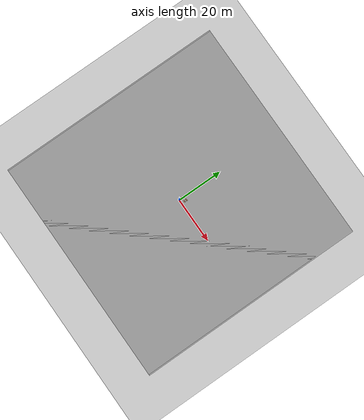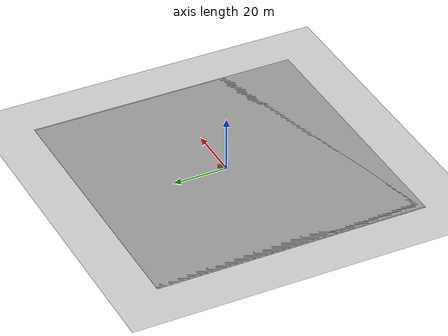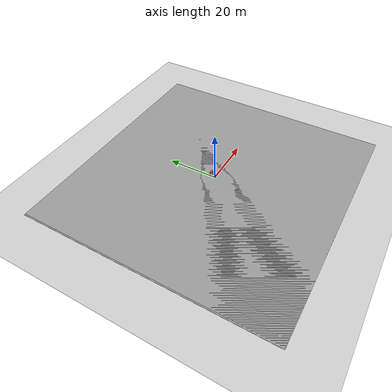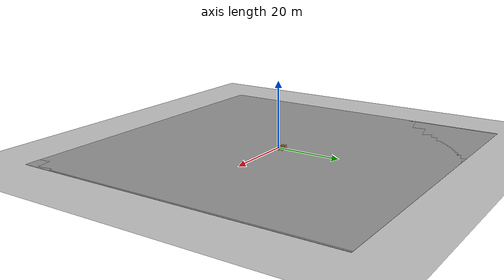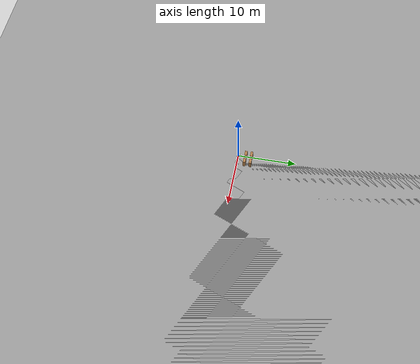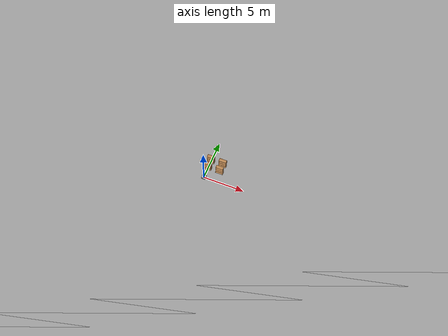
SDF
<sdf version="1.6">
 <world name="default">
  <model name="ground_plane">
   <static>1</static>
   <link name="link">
    <collision name="collision">
     <geometry><plane><normal>0 0 1</normal><size>100 100</size></plane></geometry>
     <surface><friction><ode><mu>1.0</mu><mu2>1.0</mu2></ode></friction></surface>
    </collision>
    <visual name="visual">
     <cast_shadows>0</cast_shadows>
     <geometry><plane><normal>0 0 1</normal><size>100 100</size></plane></geometry>
     <material>
      <script><uri>file://media/materials/scripts/gazebo.material</uri><name>Gazebo/Grey</name></script>
     </material>
    </visual>
   </link>
  </model>
  <light name="sun" type="directional">
   <pose>0 0 10 0 -0 0</pose>
   <diffuse>0.8 0.8 0.8 1</diffuse>
   <specular>0.1 0.1 0.1 1</specular>
   <attenuation>
    <range>1000</range>
    <constant>0.9</constant>
    <linear>0.01</linear>
    <quadratic>0.001</quadratic>
   </attenuation>
   <direction>-0.5 0.5 -1</direction>
  </light>
  <model name="bookshelf">
   <static>1</static>
   <link name="link">
    <inertial><mass>1</mass></inertial>
    <collision name="back">
     <pose>0 0.005 0.6 0 -0 0</pose>
     <geometry><box><size>0.9 0.01 1.2</size></box></geometry>
    </collision>
    <visual name="visual1">
     <pose>0 0.005 0.6 0 -0 0</pose>
     <geometry><box><size>0.9 0.01 1.2</size></box></geometry>
     <material>
      <script><uri>file://media/materials/scripts/gazebo.material</uri><name>Gazebo/Wood</name></script>
     </material>
    </visual>
    <collision name="left_side">
     <pose>0.45 -0.195 0.6 0 -0 0</pose>
     <geometry><box><size>0.02 0.4 1.2</size></box></geometry>
    </collision>
    <visual name="visual2">
     <pose>0.45 -0.195 0.6 0 -0 0</pose>
     <geometry><box><size>0.02 0.4 1.2</size></box></geometry>
     <material>
      <script><uri>file://media/materials/scripts/gazebo.material</uri><name>Gazebo/Wood</name></script>
     </material>
    </visual>
    <collision name="right_side">
     <pose>-0.45 -0.195 0.6 0 -0 0</pose>
     <geometry><box><size>0.02 0.4 1.2</size></box></geometry>
    </collision>
    <visual name="visual3">
     <pose>-0.45 -0.195 0.6 0 -0 0</pose>
     <geometry><box><size>0.02 0.4 1.2</size></box></geometry>
     <material>
      <script><uri>file://media/materials/scripts/gazebo.material</uri><name>Gazebo/Wood</name></script>
     </material>
    </visual>
    <collision name="bottom">
     <pose>0 -0.195 0.03 0 -0 0</pose>
     <geometry><box><size>0.88 0.4 0.06</size></box></geometry>
    </collision>
    <visual name="visual4">
     <pose>0 -0.195 0.03 0 -0 0</pose>
     <geometry><box><size>0.88 0.4 0.06</size></box></geometry>
     <material>
      <script><uri>file://media/materials/scripts/gazebo.material</uri><name>Gazebo/Wood</name></script>
     </material>
    </visual>
    <collision name="top">
     <pose>0 -0.195 1.19 0 -0 0</pose>
     <geometry><box><size>0.88 0.4 0.02</size></box></geometry>
    </collision>
    <visual name="visual5">
     <pose>0 -0.195 1.19 0 -0 0</pose>
     <geometry><box><size>0.88 0.4 0.02</size></box></geometry>
     <material>
      <script><uri>file://media/materials/scripts/gazebo.material</uri><name>Gazebo/Wood</name></script>
     </material>
    </visual>
    <collision name="low_shelf">
     <pose>0 -0.195 0.43 0 -0 0</pose>
     <geometry><box><size>0.88 0.4 0.02</size></box></geometry>
    </collision>
    <visual name="visual6">
     <pose>0 -0.195 0.43 0 -0 0</pose>
     <geometry><box><size>0.88 0.4 0.02</size></box></geometry>
     <material>
      <script><uri>file://media/materials/scripts/gazebo.material</uri><name>Gazebo/Wood</name></script>
     </material>
    </visual>
    <collision name="high_shelf">
     <pose>0 -0.195 0.8 0 -0 0</pose>
     <geometry><box><size>0.88 0.4 0.02</size></box></geometry>
    </collision>
    <visual name="visual7">
     <pose>0 -0.195 0.8 0 -0 0</pose>
     <geometry><box><size>0.88 0.4 0.02</size></box></geometry>
     <material>
      <script><uri>file://media/materials/scripts/gazebo.material</uri><name>Gazebo/Wood</name></script>
     </material>
    </visual>
    <velocity_decay><linear>0</linear><angular>0</angular></velocity_decay>
   </link>
   <pose>0 1.53026 0 0 -0 0</pose>
  </model>
  <model name="bookshelf_2">
   <static>1</static>
   <link name="link">
    <inertial><mass>1</mass></inertial>
    <collision name="back">
     <pose>0 0.005 0.6 0 -0 0</pose>
     <geometry><box><size>0.9 0.01 1.2</size></box></geometry>
    </collision>
    <visual name="visual1">
     <pose>0 0.005 0.6 0 -0 0</pose>
     <geometry><box><size>0.9 0.01 1.2</size></box></geometry>
     <material>
      <script><uri>file://media/materials/scripts/gazebo.material</uri><name>Gazebo/Wood</name></script>
     </material>
    </visual>
    <collision name="left_side">
     <pose>0.45 -0.195 0.6 0 -0 0</pose>
     <geometry><box><size>0.02 0.4 1.2</size></box></geometry>
    </collision>
    <visual name="visual2">
     <pose>0.45 -0.195 0.6 0 -0 0</pose>
     <geometry><box><size>0.02 0.4 1.2</size></box></geometry>
     <material>
      <script><uri>file://media/materials/scripts/gazebo.material</uri><name>Gazebo/Wood</name></script>
     </material>
    </visual>
    <collision name="right_side">
     <pose>-0.45 -0.195 0.6 0 -0 0</pose>
     <geometry><box><size>0.02 0.4 1.2</size></box></geometry>
    </collision>
    <visual name="visual3">
     <pose>-0.45 -0.195 0.6 0 -0 0</pose>
     <geometry><box><size>0.02 0.4 1.2</size></box></geometry>
     <material>
      <script><uri>file://media/materials/scripts/gazebo.material</uri><name>Gazebo/Wood</name></script>
     </material>
    </visual>
    <collision name="bottom">
     <pose>0 -0.195 0.03 0 -0 0</pose>
     <geometry><box><size>0.88 0.4 0.06</size></box></geometry>
    </collision>
    <visual name="visual4">
     <pose>0 -0.195 0.03 0 -0 0</pose>
     <geometry><box><size>0.88 0.4 0.06</size></box></geometry>
     <material>
      <script><uri>file://media/materials/scripts/gazebo.material</uri><name>Gazebo/Wood</name></script>
     </material>
    </visual>
    <collision name="top">
     <pose>0 -0.195 1.19 0 -0 0</pose>
     <geometry><box><size>0.88 0.4 0.02</size></box></geometry>
    </collision>
    <visual name="visual5">
     <pose>0 -0.195 1.19 0 -0 0</pose>
     <geometry><box><size>0.88 0.4 0.02</size></box></geometry>
     <material>
      <script><uri>file://media/materials/scripts/gazebo.material</uri><name>Gazebo/Wood</name></script>
     </material>
    </visual>
    <collision name="low_shelf">
     <pose>0 -0.195 0.43 0 -0 0</pose>
     <geometry><box><size>0.88 0.4 0.02</size></box></geometry>
    </collision>
    <visual name="visual6">
     <pose>0 -0.195 0.43 0 -0 0</pose>
     <geometry><box><size>0.88 0.4 0.02</size></box></geometry>
     <material>
      <script><uri>file://media/materials/scripts/gazebo.material</uri><name>Gazebo/Wood</name></script>
     </material>
    </visual>
    <collision name="high_shelf">
     <pose>0 -0.195 0.8 0 -0 0</pose>
     <geometry><box><size>0.88 0.4 0.02</size></box></geometry>
    </collision>
    <visual name="visual7">
     <pose>0 -0.195 0.8 0 -0 0</pose>
     <geometry><box><size>0.88 0.4 0.02</size></box></geometry>
     <material>
      <script><uri>file://media/materials/scripts/gazebo.material</uri><name>Gazebo/Wood</name></script>
     </material>
    </visual>
    <velocity_decay><linear>0</linear><angular>0</angular></velocity_decay>
   </link>
   <pose>0 2.53026 0 0 -0 0</pose>
  </model>
  <model name="ground_plane_0">
   <static>1</static>
   <link name="link">
    <collision name="collision">
     <geometry><plane><normal>0 0 1</normal><size>100 100</size></plane></geometry>
     <surface><friction><ode><mu>100</mu><mu2>50</mu2></ode></friction></surface>
    </collision>
    <visual name="visual">
     <cast_shadows>0</cast_shadows>
     <geometry><plane><normal>0 0 1</normal><size>100 100</size></plane></geometry>
     <material>
      <script><uri>file://media/materials/scripts/gazebo.material</uri><name>Gazebo/Grey</name></script>
     </material>
    </visual>
    <velocity_decay><linear>0</linear><angular>0</angular></velocity_decay>
   </link>
   <pose>0.497681 0 0 0 -0 0</pose>
  </model>
  <model name="bookshelf_3">
   <static>1</static>
   <link name="link">
    <inertial><mass>1</mass></inertial>
    <collision name="back">
     <pose>0 0.005 0.6 0 -0 0</pose>
     <geometry><box><size>0.9 0.01 1.2</size></box></geometry>
    </collision>
    <visual name="visual1">
     <pose>0 0.005 0.6 0 -0 0</pose>
     <geometry><box><size>0.9 0.01 1.2</size></box></geometry>
     <material>
      <script><uri>file://media/materials/scripts/gazebo.material</uri><name>Gazebo/Wood</name></script>
     </material>
    </visual>
    <collision name="left_side">
     <pose>0.45 -0.195 0.6 0 -0 0</pose>
     <geometry><box><size>0.02 0.4 1.2</size></box></geometry>
    </collision>
    <visual name="visual2">
     <pose>0.45 -0.195 0.6 0 -0 0</pose>
     <geometry><box><size>0.02 0.4 1.2</size></box></geometry>
     <material>
      <script><uri>file://media/materials/scripts/gazebo.material</uri><name>Gazebo/Wood</name></script>
     </material>
    </visual>
    <collision name="right_side">
     <pose>-0.45 -0.195 0.6 0 -0 0</pose>
     <geometry><box><size>0.02 0.4 1.2</size></box></geometry>
    </collision>
    <visual name="visual3">
     <pose>-0.45 -0.195 0.6 0 -0 0</pose>
     <geometry><box><size>0.02 0.4 1.2</size></box></geometry>
     <material>
      <script><uri>file://media/materials/scripts/gazebo.material</uri><name>Gazebo/Wood</name></script>
     </material>
    </visual>
    <collision name="bottom">
     <pose>0 -0.195 0.03 0 -0 0</pose>
     <geometry><box><size>0.88 0.4 0.06</size></box></geometry>
    </collision>
    <visual name="visual4">
     <pose>0 -0.195 0.03 0 -0 0</pose>
     <geometry><box><size>0.88 0.4 0.06</size></box></geometry>
     <material>
      <script><uri>file://media/materials/scripts/gazebo.material</uri><name>Gazebo/Wood</name></script>
     </material>
    </visual>
    <collision name="top">
     <pose>0 -0.195 1.19 0 -0 0</pose>
     <geometry><box><size>0.88 0.4 0.02</size></box></geometry>
    </collision>
    <visual name="visual5">
     <pose>0 -0.195 1.19 0 -0 0</pose>
     <geometry><box><size>0.88 0.4 0.02</size></box></geometry>
     <material>
      <script><uri>file://media/materials/scripts/gazebo.material</uri><name>Gazebo/Wood</name></script>
     </material>
    </visual>
    <collision name="low_shelf">
     <pose>0 -0.195 0.43 0 -0 0</pose>
     <geometry><box><size>0.88 0.4 0.02</size></box></geometry>
    </collision>
    <visual name="visual6">
     <pose>0 -0.195 0.43 0 -0 0</pose>
     <geometry><box><size>0.88 0.4 0.02</size></box></geometry>
     <material>
      <script><uri>file://media/materials/scripts/gazebo.material</uri><name>Gazebo/Wood</name></script>
     </material>
    </visual>
    <collision name="high_shelf">
     <pose>0 -0.195 0.8 0 -0 0</pose>
     <geometry><box><size>0.88 0.4 0.02</size></box></geometry>
    </collision>
    <visual name="visual7">
     <pose>0 -0.195 0.8 0 -0 0</pose>
     <geometry><box><size>0.88 0.4 0.02</size></box></geometry>
     <material>
      <script><uri>file://media/materials/scripts/gazebo.material</uri><name>Gazebo/Wood</name></script>
     </material>
    </visual>
    <velocity_decay><linear>0</linear><angular>0</angular></velocity_decay>
   </link>
   <pose>1.5 1.53026 0 0 -0 0</pose>
  </model>
  <model name="ground_plane_0">
   <static>1</static>
   <link name="link">
    <collision name="collision">
     <geometry><plane><normal>0 0 1</normal><size>100 100</size></plane></geometry>
     <surface><friction><ode><mu>100</mu><mu2>50</mu2></ode></friction></surface>
    </collision>
    <visual name="visual">
     <cast_shadows>0</cast_shadows>
     <geometry><plane><normal>0 0 1</normal><size>100 100</size></plane></geometry>
     <material>
      <script><uri>file://media/materials/scripts/gazebo.material</uri><name>Gazebo/Grey</name></script>
     </material>
    </visual>
    <velocity_decay><linear>0</linear><angular>0</angular></velocity_decay>
   </link>
   <pose>0.497681 0 0 0 -0 0</pose>
  </model>
  <model name="bookshelf_4">
   <static>1</static>
   <link name="link">
    <inertial><mass>1</mass></inertial>
    <collision name="back">
     <pose>0 0.005 0.6 0 -0 0</pose>
     <geometry><box><size>0.9 0.01 1.2</size></box></geometry>
    </collision>
    <visual name="visual1">
     <pose>0 0.005 0.6 0 -0 0</pose>
     <geometry><box><size>0.9 0.01 1.2</size></box></geometry>
     <material>
      <script><uri>file://media/materials/scripts/gazebo.material</uri><name>Gazebo/Wood</name></script>
     </material>
    </visual>
    <collision name="left_side">
     <pose>0.45 -0.195 0.6 0 -0 0</pose>
     <geometry><box><size>0.02 0.4 1.2</size></box></geometry>
    </collision>
    <visual name="visual2">
     <pose>0.45 -0.195 0.6 0 -0 0</pose>
     <geometry><box><size>0.02 0.4 1.2</size></box></geometry>
     <material>
      <script><uri>file://media/materials/scripts/gazebo.material</uri><name>Gazebo/Wood</name></script>
     </material>
    </visual>
    <collision name="right_side">
     <pose>-0.45 -0.195 0.6 0 -0 0</pose>
     <geometry><box><size>0.02 0.4 1.2</size></box></geometry>
    </collision>
    <visual name="visual3">
     <pose>-0.45 -0.195 0.6 0 -0 0</pose>
     <geometry><box><size>0.02 0.4 1.2</size></box></geometry>
     <material>
      <script><uri>file://media/materials/scripts/gazebo.material</uri><name>Gazebo/Wood</name></script>
     </material>
    </visual>
    <collision name="bottom">
     <pose>0 -0.195 0.03 0 -0 0</pose>
     <geometry><box><size>0.88 0.4 0.06</size></box></geometry>
    </collision>
    <visual name="visual4">
     <pose>0 -0.195 0.03 0 -0 0</pose>
     <geometry><box><size>0.88 0.4 0.06</size></box></geometry>
     <material>
      <script><uri>file://media/materials/scripts/gazebo.material</uri><name>Gazebo/Wood</name></script>
     </material>
    </visual>
    <collision name="top">
     <pose>0 -0.195 1.19 0 -0 0</pose>
     <geometry><box><size>0.88 0.4 0.02</size></box></geometry>
    </collision>
    <visual name="visual5">
     <pose>0 -0.195 1.19 0 -0 0</pose>
     <geometry><box><size>0.88 0.4 0.02</size></box></geometry>
     <material>
      <script><uri>file://media/materials/scripts/gazebo.material</uri><name>Gazebo/Wood</name></script>
     </material>
    </visual>
    <collision name="low_shelf">
     <pose>0 -0.195 0.43 0 -0 0</pose>
     <geometry><box><size>0.88 0.4 0.02</size></box></geometry>
    </collision>
    <visual name="visual6">
     <pose>0 -0.195 0.43 0 -0 0</pose>
     <geometry><box><size>0.88 0.4 0.02</size></box></geometry>
     <material>
      <script><uri>file://media/materials/scripts/gazebo.material</uri><name>Gazebo/Wood</name></script>
     </material>
    </visual>
    <collision name="high_shelf">
     <pose>0 -0.195 0.8 0 -0 0</pose>
     <geometry><box><size>0.88 0.4 0.02</size></box></geometry>
    </collision>
    <visual name="visual7">
     <pose>0 -0.195 0.8 0 -0 0</pose>
     <geometry><box><size>0.88 0.4 0.02</size></box></geometry>
     <material>
      <script><uri>file://media/materials/scripts/gazebo.material</uri><name>Gazebo/Wood</name></script>
     </material>
    </visual>
    <velocity_decay><linear>0</linear><angular>0</angular></velocity_decay>
   </link>
   <pose>1.5 2.53026 0 0 -0 0</pose>
  </model>
  <model name="ground_plane_0">
   <static>1</static>
   <link name="link">
    <collision name="collision">
     <geometry><plane><normal>0 0 1</normal><size>100 100</size></plane></geometry>
     <surface><friction><ode><mu>0.6</mu><mu2>0.6</mu2></ode></friction></surface>
    </collision>
    <visual name="visual">
     <cast_shadows>0</cast_shadows>
     <geometry><plane><normal>0 0 1</normal><size>100 100</size></plane></geometry>
     <material>
      <script><uri>file://media/materials/scripts/gazebo.material</uri><name>Gazebo/Grey</name></script>
     </material>
    </visual>
    <velocity_decay><linear>0</linear><angular>0</angular></velocity_decay>
   </link>
  </model>
  <model name="unit_box_0">
   <link name="link">
    <inertial>
     <mass>10</mass>
     <inertia>
      <ixx>0.166667</ixx>
      <ixy>0</ixy>
      <ixz>0</ixz>
      <iyy>0.166667</iyy>
      <iyz>0</iyz>
      <izz>0.166667</izz>
     </inertia>
    </inertial>
    <collision name="collision"><geometry><box><size>0.5 0.5 0.5</size></box></geometry></collision>
    <visual name="visual">
     <geometry><box><size>0.5 0.5 0.5</size></box></geometry>
     <material>
      <script><name>Gazebo/Grey</name><uri>file://media/materials/scripts/gazebo.material</uri></script>
     </material>
    </visual>
   </link>
  </model>
  <model name="unit_box_1">
   <link name="link">
    <inertial>
     <mass>1</mass>
     <inertia>
      <ixx>0.166667</ixx>
      <ixy>0</ixy>
      <ixz>0</ixz>
      <iyy>0.166667</iyy>
      <iyz>0</iyz>
      <izz>0.166667</izz>
     </inertia>
    </inertial>
    <collision name="collision"><geometry><box><size>0.05 0.05 0.2</size></box></geometry></collision>
    <visual name="visual">
     <geometry><box><size>0.05 0.05 0.2</size></box></geometry>
     <material>
      <script><name>Gazebo/Grey</name><uri>file://media/materials/scripts/gazebo.material</uri></script>
     </material>
    </visual>
   </link>
  </model>
  <gravity>0 0 -9.8</gravity>
  <magnetic_field>6e-06 2.3e-05 -4.2e-05</magnetic_field>
  <atmosphere type="adiabatic"/>
  <physics name="default_physics" default="0" type="ode">
   <max_step_size>0.001</max_step_size>
   <real_time_factor>1</real_time_factor>
   <real_time_update_rate>1000</real_time_update_rate>
  </physics>
  <scene><ambient>0.4 0.4 0.4 1</ambient><background>0.7 0.7 0.7 1</background><shadows>1</shadows></scene>
  <spherical_coordinates>
   <surface_model>EARTH_WGS84</surface_model>
   <latitude_deg>0</latitude_deg>
   <longitude_deg>0</longitude_deg>
   <elevation>0</elevation>
   <heading_deg>0</heading_deg>
  </spherical_coordinates>
 </world>
</sdf>
